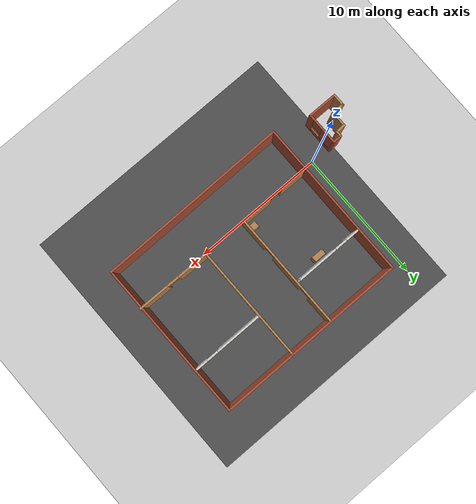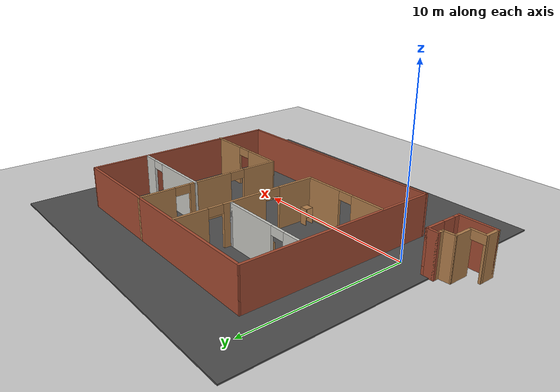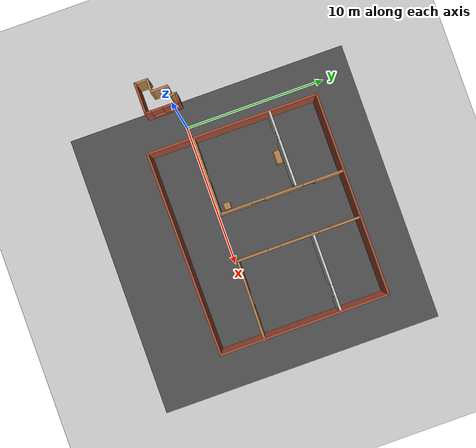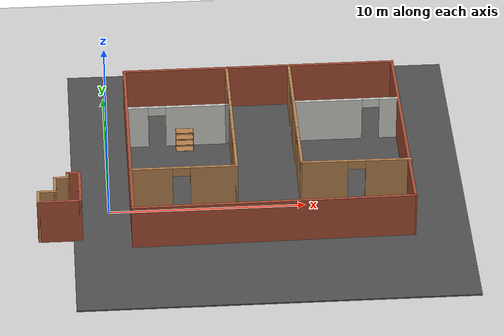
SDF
<sdf version="1.7">
 <world name="default">
  <light name="sun" type="directional">
   <pose>0 0 10 0 -0 0</pose>
   <diffuse>0.8 0.8 0.8 1</diffuse>
   <specular>0.2 0.2 0.2 1</specular>
   <attenuation>
    <range>1000</range>
    <constant>0.9</constant>
    <linear>0.01</linear>
    <quadratic>0.001</quadratic>
   </attenuation>
   <direction>-0.5 0.1 -0.9</direction>
   <spot><inner_angle>0</inner_angle><outer_angle>0</outer_angle><falloff>0</falloff></spot>
  </light>
  <model name="ground_plane">
   <static>1</static>
   <link name="link">
    <collision name="collision">
     <geometry><plane><normal>0 0 1</normal><size>100 100</size></plane></geometry>
     <surface><friction><ode><mu>100</mu><mu2>50</mu2></ode></friction></surface>
    </collision>
    <visual name="visual">
     <cast_shadows>0</cast_shadows>
     <geometry><plane><normal>0 0 1</normal><size>100 100</size></plane></geometry>
     <material>
      <script><uri>file://media/materials/scripts/gazebo.material</uri><name>Gazebo/Grey</name></script>
     </material>
    </visual>
   </link>
  </model>
  <gravity>0 0 -9.8</gravity>
  <magnetic_field>6e-06 2.3e-05 -4.2e-05</magnetic_field>
  <atmosphere type="adiabatic"/>
  <physics type="ode">
   <max_step_size>0.001</max_step_size>
   <real_time_factor>1</real_time_factor>
   <real_time_update_rate>1000</real_time_update_rate>
  </physics>
  <scene><ambient>0.4 0.4 0.4 1</ambient><background>0.7 0.7 0.7 1</background><shadows>1</shadows></scene>
  <audio><device>default</device></audio>
  <spherical_coordinates>
   <surface_model>EARTH_WGS84</surface_model>
   <latitude_deg>0</latitude_deg>
   <longitude_deg>0</longitude_deg>
   <elevation>0</elevation>
   <heading_deg>0</heading_deg>
  </spherical_coordinates>
  <model name="test_world">
   <pose>-1.86322 -1.03014 0 0 -0 0</pose>
   <link name="Wall_0">
    <collision name="Wall_0_Collision">
     <geometry><box><size>1.25 0.15 2.5</size></box></geometry>
     <pose>0 0 1.25 0 -0 0</pose>
    </collision>
    <visual name="Wall_0_Visual">
     <pose>0 0 1.25 0 -0 0</pose>
     <geometry><box><size>1.25 0.15 2.5</size></box></geometry>
     <material>
      <script><uri>file://media/materials/scripts/gazebo.material</uri><name>Gazebo/Wood</name></script>
      <ambient>1 1 1 1</ambient>
     </material>
     <meta><layer>0</layer></meta>
    </visual>
    <pose>-0.8225 0.225 0 0 -0 -1.5708</pose>
   </link>
   <link name="Wall_1">
    <pose>-1.2475 -0.325 0 0 -0 3.14159</pose>
    <visual name="Wall_1_Visual_0">
     <pose>-0.4625 0 1.25 0 -0 0</pose>
     <geometry><box><size>0.075 0.15 2.5</size></box></geometry>
     <material>
      <script><uri>file://media/materials/scripts/gazebo.material</uri><name>Gazebo/Wood</name></script>
      <ambient>1 1 1 1</ambient>
     </material>
     <meta><layer>0</layer></meta>
    </visual>
    <collision name="Wall_1_Collision_0">
     <geometry><box><size>0.075 0.15 2.5</size></box></geometry>
     <pose>-0.4625 0 1.25 0 -0 0</pose>
    </collision>
    <visual name="Wall_1_Visual_1">
     <pose>0.4875 0 1.25 0 -0 0</pose>
     <geometry><box><size>0.025 0.15 2.5</size></box></geometry>
     <material>
      <script><uri>file://media/materials/scripts/gazebo.material</uri><name>Gazebo/Wood</name></script>
      <ambient>1 1 1 1</ambient>
     </material>
     <meta><layer>0</layer></meta>
    </visual>
    <collision name="Wall_1_Collision_1">
     <geometry><box><size>0.025 0.15 2.5</size></box></geometry>
     <pose>0.4875 0 1.25 0 -0 0</pose>
    </collision>
    <visual name="Wall_1_Visual_2">
     <pose>0.025 0 2.25 0 -0 0</pose>
     <geometry><box><size>0.9 0.15 0.5</size></box></geometry>
     <material>
      <script><uri>file://media/materials/scripts/gazebo.material</uri><name>Gazebo/Wood</name></script>
      <ambient>1 1 1 1</ambient>
     </material>
     <meta><layer>0</layer></meta>
    </visual>
    <collision name="Wall_1_Collision_2">
     <geometry><box><size>0.9 0.15 0.5</size></box></geometry>
     <pose>0.025 0 2.25 0 -0 0</pose>
    </collision>
   </link>
   <link name="Wall_2">
    <collision name="Wall_2_Collision">
     <geometry><box><size>1 0.15 2.5</size></box></geometry>
     <pose>0 0 1.25 0 -0 0</pose>
    </collision>
    <visual name="Wall_2_Visual">
     <pose>0 0 1.25 0 -0 0</pose>
     <geometry><box><size>1 0.15 2.5</size></box></geometry>
     <material>
      <script><uri>file://media/materials/scripts/gazebo.material</uri><name>Gazebo/Wood</name></script>
      <ambient>1 1 1 1</ambient>
     </material>
     <meta><layer>0</layer></meta>
    </visual>
    <pose>-1.6725 -0.75 0 0 -0 -1.5708</pose>
   </link>
   <link name="Wall_3">
    <collision name="Wall_3_Collision">
     <geometry><box><size>2.25 0.15 2.5</size></box></geometry>
     <pose>0 0 1.25 0 -0 0</pose>
    </collision>
    <visual name="Wall_3_Visual">
     <pose>0 0 1.25 0 -0 0</pose>
     <geometry><box><size>2.25 0.15 2.5</size></box></geometry>
     <material>
      <script><uri>file://media/materials/scripts/gazebo.material</uri><name>Gazebo/Bricks</name></script>
      <ambient>1 1 1 1</ambient>
     </material>
     <meta><layer>0</layer></meta>
    </visual>
    <pose>-0.6225 -1.175 0 0 -0 0</pose>
   </link>
   <link name="Wall_4">
    <pose>0.4275 -0 0 0 -0 1.5708</pose>
    <visual name="Wall_4_Visual_0">
     <pose>-1.0125 0 1.25 0 -0 0</pose>
     <geometry><box><size>0.475 0.15 2.5</size></box></geometry>
     <material>
      <script><uri>file://media/materials/scripts/gazebo.material</uri><name>Gazebo/Bricks</name></script>
      <ambient>1 1 1 1</ambient>
     </material>
     <meta><layer>0</layer></meta>
    </visual>
    <collision name="Wall_4_Collision_0">
     <geometry><box><size>0.475 0.15 2.5</size></box></geometry>
     <pose>-1.0125 0 1.25 0 -0 0</pose>
    </collision>
    <visual name="Wall_4_Visual_1">
     <pose>0.2375 0 0.25 0 -0 0</pose>
     <geometry><box><size>2.025 0.15 0.5</size></box></geometry>
     <material>
      <script><uri>file://media/materials/scripts/gazebo.material</uri><name>Gazebo/Bricks</name></script>
      <ambient>1 1 1 1</ambient>
     </material>
     <meta><layer>0</layer></meta>
    </visual>
    <collision name="Wall_4_Collision_1">
     <geometry><box><size>2.025 0.15 0.5</size></box></geometry>
     <pose>0.2375 0 0.25 0 -0 0</pose>
    </collision>
    <visual name="Wall_4_Visual_2">
     <pose>0.6375 0 1.5 0 -0 0</pose>
     <geometry><box><size>1.225 0.15 2</size></box></geometry>
     <material>
      <script><uri>file://media/materials/scripts/gazebo.material</uri><name>Gazebo/Bricks</name></script>
      <ambient>1 1 1 1</ambient>
     </material>
     <meta><layer>0</layer></meta>
    </visual>
    <collision name="Wall_4_Collision_2">
     <geometry><box><size>1.225 0.15 2</size></box></geometry>
     <pose>0.6375 0 1.5 0 -0 0</pose>
    </collision>
    <visual name="Wall_4_Visual_3">
     <pose>-0.375 0 1.9 0 -0 0</pose>
     <geometry><box><size>0.8 0.15 1.2</size></box></geometry>
     <material>
      <script><uri>file://media/materials/scripts/gazebo.material</uri><name>Gazebo/Bricks</name></script>
      <ambient>1 1 1 1</ambient>
     </material>
     <meta><layer>0</layer></meta>
    </visual>
    <collision name="Wall_4_Collision_3">
     <geometry><box><size>0.8 0.15 1.2</size></box></geometry>
     <pose>-0.375 0 1.9 0 -0 0</pose>
    </collision>
   </link>
   <link name="Wall_5">
    <collision name="Wall_5_Collision">
     <geometry><box><size>0.75 0.15 2.5</size></box></geometry>
     <pose>0 0 1.25 0 -0 0</pose>
    </collision>
    <visual name="Wall_5_Visual">
     <pose>0 0 1.25 0 -0 0</pose>
     <geometry><box><size>0.75 0.15 2.5</size></box></geometry>
     <material>
      <script><uri>file://media/materials/scripts/gazebo.material</uri><name>Gazebo/Bricks</name></script>
      <ambient>1 1 1 1</ambient>
     </material>
     <meta><layer>0</layer></meta>
    </visual>
    <pose>0.1275 1.175 0 0 -0 3.14159</pose>
   </link>
   <link name="Wall_6">
    <collision name="Wall_6_Collision">
     <geometry><box><size>0.5 0.15 2.5</size></box></geometry>
     <pose>0 0 1.25 0 -0 0</pose>
    </collision>
    <visual name="Wall_6_Visual">
     <pose>0 0 1.25 0 -0 0</pose>
     <geometry><box><size>0.5 0.15 2.5</size></box></geometry>
     <material>
      <script><uri>file://media/materials/scripts/gazebo.material</uri><name>Gazebo/Wood</name></script>
      <ambient>1 1 1 1</ambient>
     </material>
     <meta><layer>0</layer></meta>
    </visual>
    <pose>-0.1725 1 0 0 -0 -1.5708</pose>
   </link>
   <link name="Wall_7">
    <collision name="Wall_7_Collision">
     <geometry><box><size>0.80192 0.15 2.5</size></box></geometry>
     <pose>0 0 1.25 0 -0 0</pose>
    </collision>
    <visual name="Wall_7_Visual">
     <pose>0 0 1.25 0 -0 0</pose>
     <geometry><box><size>0.80192 0.15 2.5</size></box></geometry>
     <material>
      <script><uri>file://media/materials/scripts/gazebo.material</uri><name>Gazebo/Wood</name></script>
      <ambient>1 1 1 1</ambient>
     </material>
     <meta><layer>0</layer></meta>
    </visual>
    <pose>-0.4975 0.8 0 0 -0 -3.06482</pose>
   </link>
   <static>1</static>
  </model>
  <model name="my_floor">
   <pose>8.25672 2.9891 0 0 -0 0</pose>
   <link name="Wall_10">
    <pose>-4.47147 2.60553 0 0 -0 0</pose>
    <visual name="Wall_10_Visual_0">
     <pose>-2.07168 0 1.25 0 -0 0</pose>
     <geometry><box><size>1.10664 0.15 2.5</size></box></geometry>
     <material>
      <script><uri>file://media/materials/scripts/gazebo.material</uri><name>Gazebo/CeilingTiled</name></script>
      <ambient>1 1 1 1</ambient>
     </material>
     <meta><layer>0</layer></meta>
    </visual>
    <collision name="Wall_10_Collision_0">
     <geometry><box><size>1.10664 0.15 2.5</size></box></geometry>
     <pose>-2.07168 0 1.25 0 -0 0</pose>
    </collision>
    <visual name="Wall_10_Visual_1">
     <pose>1.00332 0 1.25 0 -0 0</pose>
     <geometry><box><size>3.24336 0.15 2.5</size></box></geometry>
     <material>
      <script><uri>file://media/materials/scripts/gazebo.material</uri><name>Gazebo/CeilingTiled</name></script>
      <ambient>1 1 1 1</ambient>
     </material>
     <meta><layer>0</layer></meta>
    </visual>
    <collision name="Wall_10_Collision_1">
     <geometry><box><size>3.24336 0.15 2.5</size></box></geometry>
     <pose>1.00332 0 1.25 0 -0 0</pose>
    </collision>
    <visual name="Wall_10_Visual_2">
     <pose>-1.06836 0 2.25 0 -0 0</pose>
     <geometry><box><size>0.9 0.15 0.5</size></box></geometry>
     <material>
      <script><uri>file://media/materials/scripts/gazebo.material</uri><name>Gazebo/CeilingTiled</name></script>
      <ambient>1 1 1 1</ambient>
     </material>
     <meta><layer>0</layer></meta>
    </visual>
    <collision name="Wall_10_Collision_2">
     <geometry><box><size>0.9 0.15 0.5</size></box></geometry>
     <pose>-1.06836 0 2.25 0 -0 0</pose>
    </collision>
   </link>
   <link name="Wall_11">
    <collision name="Wall_11_Collision">
     <geometry><box><size>0.25 0.15 2.5</size></box></geometry>
     <pose>0 0 1.25 0 -0 0</pose>
    </collision>
    <visual name="Wall_11_Visual">
     <pose>0 0 1.25 0 -0 0</pose>
     <geometry><box><size>0.25 0.15 2.5</size></box></geometry>
     <material>
      <script><uri>file://media/materials/scripts/gazebo.material</uri><name>Gazebo/Grey</name></script>
      <ambient>1 1 1 1</ambient>
     </material>
     <meta><layer>0</layer></meta>
    </visual>
    <pose>-1.87147 2.60553 0 0 -0 0</pose>
   </link>
   <link name="Wall_14">
    <pose>1.56164 1.6282 0 0 -0 -1.56726</pose>
    <visual name="Wall_14_Visual_0">
     <pose>-3.33525 0 1.25 0 -0 0</pose>
     <geometry><box><size>2.13675 0.15 2.5</size></box></geometry>
     <material>
      <script><uri>file://media/materials/scripts/gazebo.material</uri><name>Gazebo/Wood</name></script>
      <ambient>1 1 1 1</ambient>
     </material>
     <meta><layer>0</layer></meta>
    </visual>
    <collision name="Wall_14_Collision_0">
     <geometry><box><size>2.13675 0.15 2.5</size></box></geometry>
     <pose>-3.33525 0 1.25 0 -0 0</pose>
    </collision>
    <visual name="Wall_14_Visual_1">
     <pose>-0.027732 0 1.25 0 -0 0</pose>
     <geometry><box><size>2.67828 0.15 2.5</size></box></geometry>
     <material>
      <script><uri>file://media/materials/scripts/gazebo.material</uri><name>Gazebo/Wood</name></script>
      <ambient>1 1 1 1</ambient>
     </material>
     <meta><layer>0</layer></meta>
    </visual>
    <collision name="Wall_14_Collision_1">
     <geometry><box><size>2.67828 0.15 2.5</size></box></geometry>
     <pose>-0.027732 0 1.25 0 -0 0</pose>
    </collision>
    <visual name="Wall_14_Visual_2">
     <pose>3.30752 0 1.25 0 -0 0</pose>
     <geometry><box><size>2.19222 0.15 2.5</size></box></geometry>
     <material>
      <script><uri>file://media/materials/scripts/gazebo.material</uri><name>Gazebo/Wood</name></script>
      <ambient>1 1 1 1</ambient>
     </material>
     <meta><layer>0</layer></meta>
    </visual>
    <collision name="Wall_14_Collision_2">
     <geometry><box><size>2.19222 0.15 2.5</size></box></geometry>
     <pose>3.30752 0 1.25 0 -0 0</pose>
    </collision>
    <visual name="Wall_14_Visual_3">
     <pose>-1.81687 0 2.25 0 -0 0</pose>
     <geometry><box><size>0.9 0.15 0.5</size></box></geometry>
     <material>
      <script><uri>file://media/materials/scripts/gazebo.material</uri><name>Gazebo/Wood</name></script>
      <ambient>1 1 1 1</ambient>
     </material>
     <meta><layer>0</layer></meta>
    </visual>
    <collision name="Wall_14_Collision_3">
     <geometry><box><size>0.9 0.15 0.5</size></box></geometry>
     <pose>-1.81687 0 2.25 0 -0 0</pose>
    </collision>
    <visual name="Wall_14_Visual_4">
     <pose>1.76141 0 2.25 0 -0 0</pose>
     <geometry><box><size>0.9 0.15 0.5</size></box></geometry>
     <material>
      <script><uri>file://media/materials/scripts/gazebo.material</uri><name>Gazebo/Wood</name></script>
      <ambient>1 1 1 1</ambient>
     </material>
     <meta><layer>0</layer></meta>
    </visual>
    <collision name="Wall_14_Collision_4">
     <geometry><box><size>0.9 0.15 0.5</size></box></geometry>
     <pose>1.76141 0 2.25 0 -0 0</pose>
    </collision>
   </link>
   <link name="Wall_15">
    <pose>4.34535 -2.7309 0 0 -0 -0.011049</pose>
    <visual name="Wall_15_Visual_0">
     <pose>-1.63443 0 1.25 0 -0 0</pose>
     <geometry><box><size>2.41831 0.15 2.5</size></box></geometry>
     <material>
      <script><uri>file://media/materials/scripts/gazebo.material</uri><name>Gazebo/Wood</name></script>
      <ambient>1 1 1 1</ambient>
     </material>
     <meta><layer>0</layer></meta>
    </visual>
    <collision name="Wall_15_Collision_0">
     <geometry><box><size>2.41831 0.15 2.5</size></box></geometry>
     <pose>-1.63443 0 1.25 0 -0 0</pose>
    </collision>
    <visual name="Wall_15_Visual_1">
     <pose>1.65916 0 1.25 0 -0 0</pose>
     <geometry><box><size>2.36886 0.15 2.5</size></box></geometry>
     <material>
      <script><uri>file://media/materials/scripts/gazebo.material</uri><name>Gazebo/Wood</name></script>
      <ambient>1 1 1 1</ambient>
     </material>
     <meta><layer>0</layer></meta>
    </visual>
    <collision name="Wall_15_Collision_1">
     <geometry><box><size>2.36886 0.15 2.5</size></box></geometry>
     <pose>1.65916 0 1.25 0 -0 0</pose>
    </collision>
    <visual name="Wall_15_Visual_2">
     <pose>0.024726 0 2.25 0 -0 0</pose>
     <geometry><box><size>0.9 0.15 0.5</size></box></geometry>
     <material>
      <script><uri>file://media/materials/scripts/gazebo.material</uri><name>Gazebo/Wood</name></script>
      <ambient>1 1 1 1</ambient>
     </material>
     <meta><layer>0</layer></meta>
    </visual>
    <collision name="Wall_15_Collision_2">
     <geometry><box><size>0.9 0.15 0.5</size></box></geometry>
     <pose>0.024726 0 2.25 0 -0 0</pose>
    </collision>
   </link>
   <link name="Wall_17">
    <pose>4.22135 2.62239 0 0 -0 0</pose>
    <visual name="Wall_17_Visual_0">
     <pose>-0.928464 0 1.25 0 -0 0</pose>
     <geometry><box><size>3.64307 0.15 2.5</size></box></geometry>
     <material>
      <script><uri>file://media/materials/scripts/gazebo.material</uri><name>Gazebo/CeilingTiled</name></script>
      <ambient>1 1 1 1</ambient>
     </material>
     <meta><layer>0</layer></meta>
    </visual>
    <collision name="Wall_17_Collision_0">
     <geometry><box><size>3.64307 0.15 2.5</size></box></geometry>
     <pose>-0.928464 0 1.25 0 -0 0</pose>
    </collision>
    <visual name="Wall_17_Visual_1">
     <pose>2.27154 0 1.25 0 -0 0</pose>
     <geometry><box><size>0.956927 0.15 2.5</size></box></geometry>
     <material>
      <script><uri>file://media/materials/scripts/gazebo.material</uri><name>Gazebo/CeilingTiled</name></script>
      <ambient>1 1 1 1</ambient>
     </material>
     <meta><layer>0</layer></meta>
    </visual>
    <collision name="Wall_17_Collision_1">
     <geometry><box><size>0.956927 0.15 2.5</size></box></geometry>
     <pose>2.27154 0 1.25 0 -0 0</pose>
    </collision>
    <visual name="Wall_17_Visual_2">
     <pose>1.34307 0 2.25 0 -0 0</pose>
     <geometry><box><size>0.9 0.15 0.5</size></box></geometry>
     <material>
      <script><uri>file://media/materials/scripts/gazebo.material</uri><name>Gazebo/CeilingTiled</name></script>
      <ambient>1 1 1 1</ambient>
     </material>
     <meta><layer>0</layer></meta>
    </visual>
    <collision name="Wall_17_Collision_2">
     <geometry><box><size>0.9 0.15 0.5</size></box></geometry>
     <pose>1.34307 0 2.25 0 -0 0</pose>
    </collision>
   </link>
   <link name="Wall_19">
    <pose>-1.72936 1.55224 0 0 -0 1.5708</pose>
    <visual name="Wall_19_Visual_0">
     <pose>-3.22486 0 1.25 0 -0 0</pose>
     <geometry><box><size>2.30027 0.15 2.5</size></box></geometry>
     <material>
      <script><uri>file://media/materials/scripts/gazebo.material</uri><name>Gazebo/Wood</name></script>
      <ambient>1 1 1 1</ambient>
     </material>
     <meta><layer>0</layer></meta>
    </visual>
    <collision name="Wall_19_Collision_0">
     <geometry><box><size>2.30027 0.15 2.5</size></box></geometry>
     <pose>-3.22486 0 1.25 0 -0 0</pose>
    </collision>
    <visual name="Wall_19_Visual_1">
     <pose>0.164802 0 1.25 0 -0 0</pose>
     <geometry><box><size>2.67906 0.15 2.5</size></box></geometry>
     <material>
      <script><uri>file://media/materials/scripts/gazebo.material</uri><name>Gazebo/Wood</name></script>
      <ambient>1 1 1 1</ambient>
     </material>
     <meta><layer>0</layer></meta>
    </visual>
    <collision name="Wall_19_Collision_1">
     <geometry><box><size>2.67906 0.15 2.5</size></box></geometry>
     <pose>0.164802 0 1.25 0 -0 0</pose>
    </collision>
    <visual name="Wall_19_Visual_2">
     <pose>3.38966 0 1.25 0 -0 0</pose>
     <geometry><box><size>1.97067 0.15 2.5</size></box></geometry>
     <material>
      <script><uri>file://media/materials/scripts/gazebo.material</uri><name>Gazebo/Wood</name></script>
      <ambient>1 1 1 1</ambient>
     </material>
     <meta><layer>0</layer></meta>
    </visual>
    <collision name="Wall_19_Collision_2">
     <geometry><box><size>1.97067 0.15 2.5</size></box></geometry>
     <pose>3.38966 0 1.25 0 -0 0</pose>
    </collision>
    <visual name="Wall_19_Visual_3">
     <pose>-1.62473 0 2.25 0 -0 0</pose>
     <geometry><box><size>0.9 0.15 0.5</size></box></geometry>
     <material>
      <script><uri>file://media/materials/scripts/gazebo.material</uri><name>Gazebo/Wood</name></script>
      <ambient>1 1 1 1</ambient>
     </material>
     <meta><layer>0</layer></meta>
    </visual>
    <collision name="Wall_19_Collision_3">
     <geometry><box><size>0.9 0.15 0.5</size></box></geometry>
     <pose>-1.62473 0 2.25 0 -0 0</pose>
    </collision>
    <visual name="Wall_19_Visual_4">
     <pose>1.95433 0 2.25 0 -0 0</pose>
     <geometry><box><size>0.9 0.15 0.5</size></box></geometry>
     <material>
      <script><uri>file://media/materials/scripts/gazebo.material</uri><name>Gazebo/Wood</name></script>
      <ambient>1 1 1 1</ambient>
     </material>
     <meta><layer>0</layer></meta>
    </visual>
    <collision name="Wall_19_Collision_4">
     <geometry><box><size>0.9 0.15 0.5</size></box></geometry>
     <pose>1.95433 0 2.25 0 -0 0</pose>
    </collision>
   </link>
   <link name="Wall_2">
    <collision name="Wall_2_Collision">
     <geometry><box><size>14.3149 0.15 2.5</size></box></geometry>
     <pose>0 0 1.25 0 -0 0</pose>
    </collision>
    <visual name="Wall_2_Visual">
     <pose>0 0 1.25 0 -0 0</pose>
     <geometry><box><size>14.3149 0.15 2.5</size></box></geometry>
     <material>
      <script><uri>file://media/materials/scripts/gazebo.material</uri><name>Gazebo/Bricks</name></script>
      <ambient>1 1 1 1</ambient>
     </material>
     <meta><layer>0</layer></meta>
    </visual>
    <pose>-0.031754 -5.90376 0 0 -0 0.009374</pose>
   </link>
   <link name="Wall_21">
    <collision name="Wall_21_Collision">
     <geometry><box><size>12 0.15 2.5</size></box></geometry>
     <pose>0 0 1.25 0 -0 0</pose>
    </collision>
    <visual name="Wall_21_Visual">
     <pose>0 0 1.25 0 -0 0</pose>
     <geometry><box><size>12 0.15 2.5</size></box></geometry>
     <material>
      <script><uri>file://media/materials/scripts/gazebo.material</uri><name>Gazebo/Bricks</name></script>
      <ambient>1 1 1 1</ambient>
     </material>
     <meta><layer>0</layer></meta>
    </visual>
    <pose>-7.10122 0.001437 0 0 -0 -1.5708</pose>
   </link>
   <link name="Wall_3">
    <collision name="Wall_3_Collision">
     <geometry><box><size>11.958 0.15 2.5</size></box></geometry>
     <pose>0 0 1.25 0 -0 0</pose>
    </collision>
    <visual name="Wall_3_Visual">
     <pose>0 0 1.25 0 -0 0</pose>
     <geometry><box><size>11.958 0.15 2.5</size></box></geometry>
     <material>
      <script><uri>file://media/materials/scripts/gazebo.material</uri><name>Gazebo/Bricks</name></script>
      <ambient>1 1 1 1</ambient>
     </material>
     <meta><layer>0</layer></meta>
    </visual>
    <pose>7.01944 0.066545 0 0 -0 1.57598</pose>
   </link>
   <link name="Wall_4">
    <collision name="Wall_4_Collision">
     <geometry><box><size>14.2401 0.15 2.5</size></box></geometry>
     <pose>0 0 1.25 0 -0 0</pose>
    </collision>
    <visual name="Wall_4_Visual">
     <pose>0 0 1.25 0 -0 0</pose>
     <geometry><box><size>14.2401 0.15 2.5</size></box></geometry>
     <material>
      <script><uri>file://media/materials/scripts/gazebo.material</uri><name>Gazebo/Bricks</name></script>
      <ambient>1 1 1 1</ambient>
     </material>
     <meta><layer>0</layer></meta>
    </visual>
    <pose>-0.056185 5.94845 0 0 -0 -3.13847</pose>
   </link>
   <link name="Wall_8">
    <pose>-4.40436 -2.74776 0 0 -0 3.14159</pose>
    <visual name="Wall_8_Visual_0">
     <pose>-1.537 0 1.25 0 -0 0</pose>
     <geometry><box><size>2.42599 0.15 2.5</size></box></geometry>
     <material>
      <script><uri>file://media/materials/scripts/gazebo.material</uri><name>Gazebo/Wood</name></script>
      <ambient>1 1 1 1</ambient>
     </material>
     <meta><layer>0</layer></meta>
    </visual>
    <collision name="Wall_8_Collision_0">
     <geometry><box><size>2.42599 0.15 2.5</size></box></geometry>
     <pose>-1.537 0 1.25 0 -0 0</pose>
    </collision>
    <visual name="Wall_8_Visual_1">
     <pose>1.663 0 1.25 0 -0 0</pose>
     <geometry><box><size>2.17401 0.15 2.5</size></box></geometry>
     <material>
      <script><uri>file://media/materials/scripts/gazebo.material</uri><name>Gazebo/Wood</name></script>
      <ambient>1 1 1 1</ambient>
     </material>
     <meta><layer>0</layer></meta>
    </visual>
    <collision name="Wall_8_Collision_1">
     <geometry><box><size>2.17401 0.15 2.5</size></box></geometry>
     <pose>1.663 0 1.25 0 -0 0</pose>
    </collision>
    <visual name="Wall_8_Visual_2">
     <pose>0.125992 0 2.25 0 -0 0</pose>
     <geometry><box><size>0.9 0.15 0.5</size></box></geometry>
     <material>
      <script><uri>file://media/materials/scripts/gazebo.material</uri><name>Gazebo/Wood</name></script>
      <ambient>1 1 1 1</ambient>
     </material>
     <meta><layer>0</layer></meta>
    </visual>
    <collision name="Wall_8_Collision_2">
     <geometry><box><size>0.9 0.15 0.5</size></box></geometry>
     <pose>0.125992 0 2.25 0 -0 0</pose>
    </collision>
   </link>
   <static>1</static>
  </model>
  <model name="bookshelf">
   <static>1</static>
   <link name="link">
    <inertial><mass>1</mass></inertial>
    <collision name="back">
     <pose>0 0.005 0.6 0 -0 0</pose>
     <geometry><box><size>0.9 0.01 1.2</size></box></geometry>
    </collision>
    <visual name="visual1">
     <pose>0 0.005 0.6 0 -0 0</pose>
     <geometry><box><size>0.9 0.01 1.2</size></box></geometry>
     <material>
      <script><uri>file://media/materials/scripts/gazebo.material</uri><name>Gazebo/Wood</name></script>
     </material>
    </visual>
    <collision name="left_side">
     <pose>0.45 -0.195 0.6 0 -0 0</pose>
     <geometry><box><size>0.02 0.4 1.2</size></box></geometry>
    </collision>
    <visual name="visual2">
     <pose>0.45 -0.195 0.6 0 -0 0</pose>
     <geometry><box><size>0.02 0.4 1.2</size></box></geometry>
     <material>
      <script><uri>file://media/materials/scripts/gazebo.material</uri><name>Gazebo/Wood</name></script>
     </material>
    </visual>
    <collision name="right_side">
     <pose>-0.45 -0.195 0.6 0 -0 0</pose>
     <geometry><box><size>0.02 0.4 1.2</size></box></geometry>
    </collision>
    <visual name="visual3">
     <pose>-0.45 -0.195 0.6 0 -0 0</pose>
     <geometry><box><size>0.02 0.4 1.2</size></box></geometry>
     <material>
      <script><uri>file://media/materials/scripts/gazebo.material</uri><name>Gazebo/Wood</name></script>
     </material>
    </visual>
    <collision name="bottom">
     <pose>0 -0.195 0.03 0 -0 0</pose>
     <geometry><box><size>0.88 0.4 0.06</size></box></geometry>
    </collision>
    <visual name="visual4">
     <pose>0 -0.195 0.03 0 -0 0</pose>
     <geometry><box><size>0.88 0.4 0.06</size></box></geometry>
     <material>
      <script><uri>file://media/materials/scripts/gazebo.material</uri><name>Gazebo/Wood</name></script>
     </material>
    </visual>
    <collision name="top">
     <pose>0 -0.195 1.19 0 -0 0</pose>
     <geometry><box><size>0.88 0.4 0.02</size></box></geometry>
    </collision>
    <visual name="visual5">
     <pose>0 -0.195 1.19 0 -0 0</pose>
     <geometry><box><size>0.88 0.4 0.02</size></box></geometry>
     <material>
      <script><uri>file://media/materials/scripts/gazebo.material</uri><name>Gazebo/Wood</name></script>
     </material>
    </visual>
    <collision name="low_shelf">
     <pose>0 -0.195 0.43 0 -0 0</pose>
     <geometry><box><size>0.88 0.4 0.02</size></box></geometry>
    </collision>
    <visual name="visual6">
     <pose>0 -0.195 0.43 0 -0 0</pose>
     <geometry><box><size>0.88 0.4 0.02</size></box></geometry>
     <material>
      <script><uri>file://media/materials/scripts/gazebo.material</uri><name>Gazebo/Wood</name></script>
     </material>
    </visual>
    <collision name="high_shelf">
     <pose>0 -0.195 0.8 0 -0 0</pose>
     <geometry><box><size>0.88 0.4 0.02</size></box></geometry>
    </collision>
    <visual name="visual7">
     <pose>0 -0.195 0.8 0 -0 0</pose>
     <geometry><box><size>0.88 0.4 0.02</size></box></geometry>
     <material>
      <script><uri>file://media/materials/scripts/gazebo.material</uri><name>Gazebo/Wood</name></script>
     </material>
    </visual>
   </link>
   <pose>4.11257 5.40581 0 0 -0 0</pose>
  </model>
  <model name="cabinet">
   <static>1</static>
   <link name="cabinet_bottom_plate">
    <inertial>
     <pose>0 0 -1 0 -0 0</pose>
     <inertia><ixx>2.05</ixx><ixy>0</ixy><ixz>0</ixz><iyy>2.05</iyy><iyz>0</iyz><izz>2.05</izz></inertia>
     <mass>25</mass>
    </inertial>
    <collision name="cabinet_bottom_plate_geom">
     <pose>0 0 0.01 0 -0 0</pose>
     <geometry><box><size>0.45 0.45 0.02</size></box></geometry>
    </collision>
    <visual name="cabinet_bottom_plate_geom_visual">
     <pose>0 0 0.01 0 -0 0</pose>
     <geometry><box><size>0.45 0.45 0.02</size></box></geometry>
     <material>
      <script><uri>file://media/materials/scripts/gazebo.material</uri><name>Gazebo/Wood</name></script>
     </material>
    </visual>
    <collision name="cabinet_bottom_plate_geom_cabinet_back_plate">
     <pose>0.235 0 0.51 0 -0 0</pose>
     <geometry><box><size>0.02 0.45 1.02</size></box></geometry>
    </collision>
    <visual name="cabinet_bottom_plate_geom_cabinet_back_plate_visual">
     <pose>0.235 0 0.51 0 -0 0</pose>
     <geometry><box><size>0.02 0.45 1.02</size></box></geometry>
     <material>
      <script><uri>file://media/materials/scripts/gazebo.material</uri><name>Gazebo/Wood</name></script>
     </material>
    </visual>
    <collision name="cabinet_bottom_plate_geom_cabinet_left_plate">
     <pose>0 0.235 0.51 0 -0 0</pose>
     <geometry><box><size>0.45 0.02 1.02</size></box></geometry>
    </collision>
    <visual name="cabinet_bottom_plate_geom_cabinet_left_plate_visual">
     <pose>0 0.235 0.51 0 -0 0</pose>
     <geometry><box><size>0.45 0.02 1.02</size></box></geometry>
     <material>
      <script><uri>file://media/materials/scripts/gazebo.material</uri><name>Gazebo/Wood</name></script>
     </material>
    </visual>
    <collision name="cabinet_bottom_plate_geom_cabinet_middle_plate">
     <pose>0 0 0.51 0 -0 0</pose>
     <geometry><box><size>0.45 0.45 0.02</size></box></geometry>
    </collision>
    <visual name="cabinet_bottom_plate_geom_cabinet_middle_plate_visual">
     <pose>0 0 0.51 0 -0 0</pose>
     <geometry><box><size>0.45 0.45 0.02</size></box></geometry>
     <material>
      <script><uri>file://media/materials/scripts/gazebo.material</uri><name>Gazebo/Wood</name></script>
     </material>
    </visual>
    <collision name="cabinet_bottom_plate_geom_cabinet_right_plate">
     <pose>0 -0.235 0.51 0 -0 0</pose>
     <geometry><box><size>0.45 0.02 1.02</size></box></geometry>
    </collision>
    <visual name="cabinet_bottom_plate_geom_cabinet_right_plate_visual">
     <pose>0 -0.235 0.51 0 -0 0</pose>
     <geometry><box><size>0.45 0.02 1.02</size></box></geometry>
     <material>
      <script><uri>file://media/materials/scripts/gazebo.material</uri><name>Gazebo/Wood</name></script>
     </material>
    </visual>
    <collision name="cabinet_bottom_plate_geom_cabinet_top_plate">
     <pose>0 0 1.01 0 -0 0</pose>
     <geometry><box><size>0.45 0.45 0.02</size></box></geometry>
    </collision>
    <visual name="cabinet_bottom_plate_geom_cabinet_top_plate_visual">
     <pose>0 0 1.01 0 -0 0</pose>
     <geometry><box><size>0.45 0.45 0.02</size></box></geometry>
     <material>
      <script><uri>file://media/materials/scripts/gazebo.material</uri><name>Gazebo/Wood</name></script>
     </material>
    </visual>
   </link>
   <pose>6.07906 0.828952 0 0 -0 0</pose>
  </model>
  <model name="asphalt_plane">
   <static>1</static>
   <link name="link">
    <collision name="collision"><geometry><box><size>20 20 0.1</size></box></geometry></collision>
    <visual name="visual">
     <cast_shadows>0</cast_shadows>
     <geometry><box><size>20 20 0.1</size></box></geometry>
     <material>
      <script>
       <uri>model://asphalt_plane/materials/scripts</uri>
       <uri>model://asphalt_plane/materials/textures</uri>
       <name>vrc/asphalt</name>
      </script>
     </material>
    </visual>
   </link>
   <pose>8.16394 2.04434 0 0 -0 0</pose>
  </model>
 </world>
</sdf>
